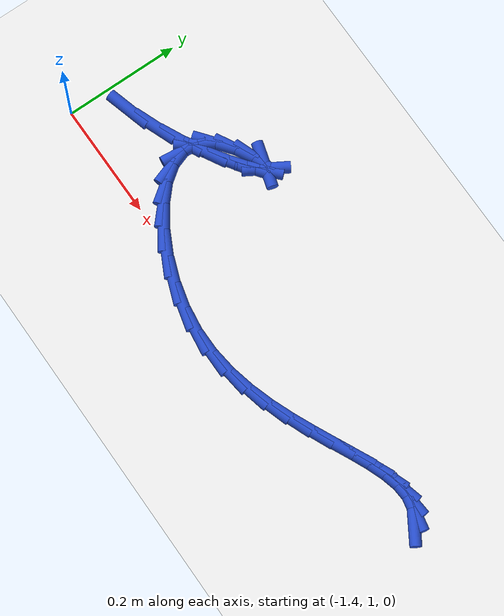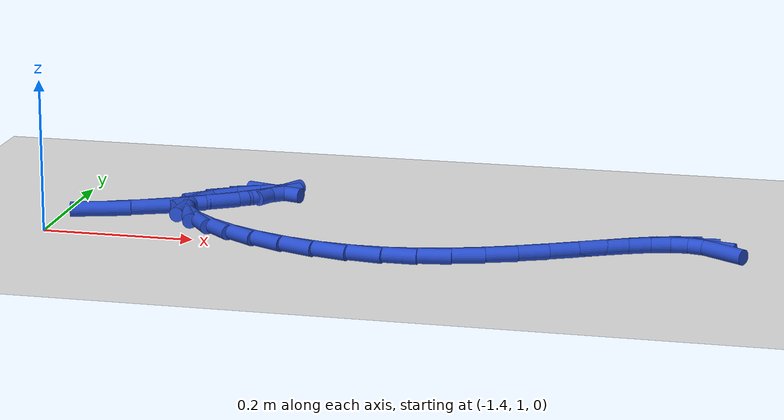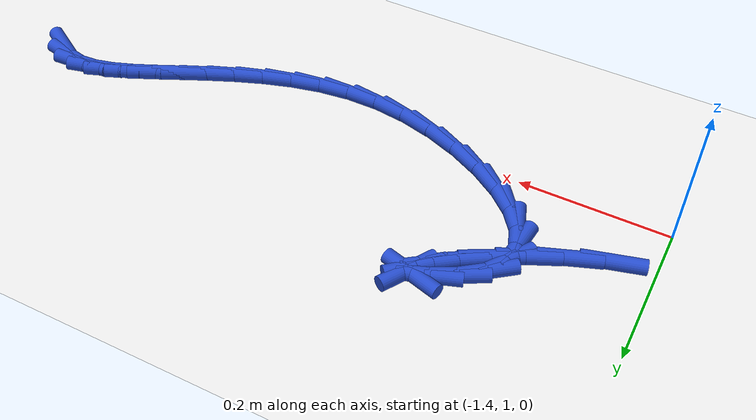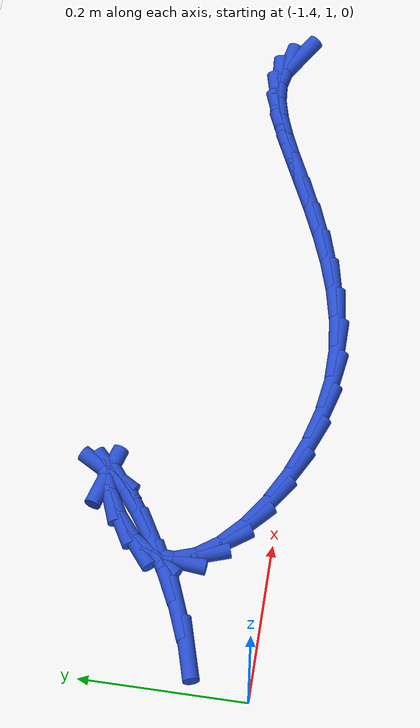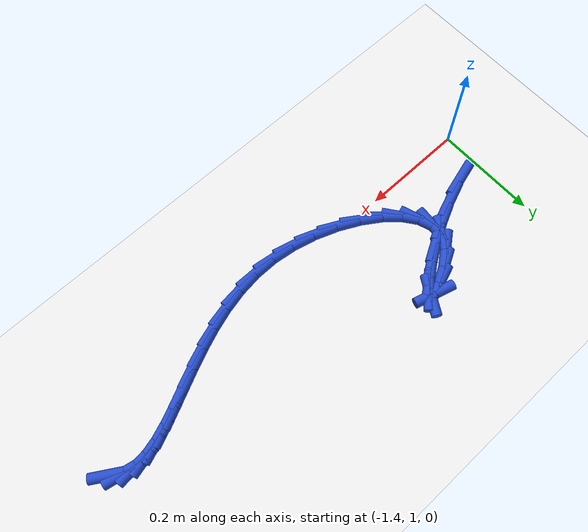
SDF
<sdf version="1.6">
 <world name="default">
  <model name="ground_plane">
   <static>1</static>
   <link name="link">
    <collision name="collision">
     <geometry><plane><normal>0 0 1</normal><size>100 100</size></plane></geometry>
     <surface><friction><ode><mu>100</mu><mu2>50</mu2></ode></friction></surface>
    </collision>
    <visual name="visual">
     <cast_shadows>0</cast_shadows>
     <geometry><plane><normal>0 0 1</normal><size>100 100</size></plane></geometry>
     <material>
      <script><uri>file://media/materials/scripts/gazebo.material</uri><name>Gazebo/WhiteGlow</name></script>
     </material>
    </visual>
   </link>
  </model>
  <model name="line">
   <link name="link_38">
    <pose>-0.5342574480073634 1.0647230932263498 0.01 0 1.57 -0.5526281072199354</pose>
    <collision name="collision">
     <geometry><cylinder><radius>0.01</radius><length>0.08</length></cylinder></geometry>
    </collision>
    <visual name="visual">
     <material>
      <script><name>Gazebo/Blue</name><uri>file://media/materials/scripts/gazebo.material</uri></script>
     </material>
     <geometry><cylinder><radius>0.01</radius><length>0.08</length></cylinder></geometry>
    </visual>
   </link>
   <link name="link_39">
    <pose>-0.5521880657098341 1.0757813904558735 0.01 0 1.57 -0.20149169539810724</pose>
    <collision name="collision">
     <geometry><cylinder><radius>0.01</radius><length>0.08</length></cylinder></geometry>
    </collision>
    <visual name="visual">
     <material>
      <script><name>Gazebo/Blue</name><uri>file://media/materials/scripts/gazebo.material</uri></script>
     </material>
     <geometry><cylinder><radius>0.01</radius><length>0.08</length></cylinder></geometry>
    </visual>
   </link>
   <link name="link_40">
    <pose>-0.5726169906189474 1.079954274109767 0.01 0 1.57 0.0745900186100927</pose>
    <collision name="collision">
     <geometry><cylinder><radius>0.01</radius><length>0.08</length></cylinder></geometry>
    </collision>
    <visual name="visual">
     <material>
      <script><name>Gazebo/Blue</name><uri>file://media/materials/scripts/gazebo.material</uri></script>
     </material>
     <geometry><cylinder><radius>0.01</radius><length>0.08</length></cylinder></geometry>
    </visual>
   </link>
   <link name="link_41">
    <pose>-0.5954534186957834 1.0782477384724785 0.01 0 1.57 0.25586253684193516</pose>
    <collision name="collision">
     <geometry><cylinder><radius>0.01</radius><length>0.08</length></cylinder></geometry>
    </collision>
    <visual name="visual">
     <material>
      <script><name>Gazebo/Blue</name><uri>file://media/materials/scripts/gazebo.material</uri></script>
     </material>
     <geometry><cylinder><radius>0.01</radius><length>0.08</length></cylinder></geometry>
    </visual>
   </link>
   <link name="link_42">
    <pose>-0.6206065459014207 1.0716677778284585 0.01 0 1.57 0.3645302382293565</pose>
    <collision name="collision">
     <geometry><cylinder><radius>0.01</radius><length>0.08</length></cylinder></geometry>
    </collision>
    <visual name="visual">
     <material>
      <script><name>Gazebo/Blue</name><uri>file://media/materials/scripts/gazebo.material</uri></script>
     </material>
     <geometry><cylinder><radius>0.01</radius><length>0.08</length></cylinder></geometry>
    </visual>
   </link>
   <link name="link_43">
    <pose>-0.6479855681969392 1.0612203864621559 0.01 0 1.57 0.4236278530203895</pose>
    <collision name="collision">
     <geometry><cylinder><radius>0.01</radius><length>0.08</length></cylinder></geometry>
    </collision>
    <visual name="visual">
     <material>
      <script><name>Gazebo/Blue</name><uri>file://media/materials/scripts/gazebo.material</uri></script>
     </material>
     <geometry><cylinder><radius>0.01</radius><length>0.08</length></cylinder></geometry>
    </visual>
   </link>
   <link name="link_44">
    <pose>-0.6774996815434189 1.047911558658021 0.01 0 1.57 0.4479380733620824</pose>
    <collision name="collision">
     <geometry><cylinder><radius>0.01</radius><length>0.08</length></cylinder></geometry>
    </collision>
    <visual name="visual">
     <material>
      <script><name>Gazebo/Blue</name><uri>file://media/materials/scripts/gazebo.material</uri></script>
     </material>
     <geometry><cylinder><radius>0.01</radius><length>0.08</length></cylinder></geometry>
    </visual>
   </link>
   <link name="link_45">
    <pose>-0.7090580819019382 1.0327472887005027 0.01 0 1.57 0.44577267475583565</pose>
    <collision name="collision">
     <geometry><cylinder><radius>0.01</radius><length>0.08</length></cylinder></geometry>
    </collision>
    <visual name="visual">
     <material>
      <script><name>Gazebo/Blue</name><uri>file://media/materials/scripts/gazebo.material</uri></script>
     </material>
     <geometry><cylinder><radius>0.01</radius><length>0.08</length></cylinder></geometry>
    </visual>
   </link>
   <link name="link_46">
    <pose>-0.7425699652335775 1.0167335708740508 0.01 0 1.57 0.42141000356976116</pose>
    <collision name="collision">
     <geometry><cylinder><radius>0.01</radius><length>0.08</length></cylinder></geometry>
    </collision>
    <visual name="visual">
     <material>
      <script><name>Gazebo/Blue</name><uri>file://media/materials/scripts/gazebo.material</uri></script>
     </material>
     <geometry><cylinder><radius>0.01</radius><length>0.08</length></cylinder></geometry>
    </visual>
   </link>
   <link name="link_47">
    <pose>-0.7779445274994157 1.0008763994631151 0.01 0 1.57 0.3766958932644989</pose>
    <collision name="collision">
     <geometry><cylinder><radius>0.01</radius><length>0.08</length></cylinder></geometry>
    </collision>
    <visual name="visual">
     <material>
      <script><name>Gazebo/Blue</name><uri>file://media/materials/scripts/gazebo.material</uri></script>
     </material>
     <geometry><cylinder><radius>0.01</radius><length>0.08</length></cylinder></geometry>
    </visual>
   </link>
   <link name="link_48">
    <pose>-0.8150909646605328 0.9861817687521451 0.01 0 1.57 0.3120676215993677</pose>
    <collision name="collision">
     <geometry><cylinder><radius>0.01</radius><length>0.08</length></cylinder></geometry>
    </collision>
    <visual name="visual">
     <material>
      <script><name>Gazebo/Blue</name><uri>file://media/materials/scripts/gazebo.material</uri></script>
     </material>
     <geometry><cylinder><radius>0.01</radius><length>0.08</length></cylinder></geometry>
    </visual>
   </link>
   <link name="link_49">
    <pose>-0.8539184726780076 0.9736556730255902 0.01 0 1.57 0.22737165304087853</pose>
    <collision name="collision">
     <geometry><cylinder><radius>0.01</radius><length>0.08</length></cylinder></geometry>
    </collision>
    <visual name="visual">
     <material>
      <script><name>Gazebo/Blue</name><uri>file://media/materials/scripts/gazebo.material</uri></script>
     </material>
     <geometry><cylinder><radius>0.01</radius><length>0.08</length></cylinder></geometry>
    </visual>
   </link>
   <link name="link_50">
    <pose>-0.8943362475129205 0.9643041065678999 0.01 0 1.57 0.1227430136782317</pose>
    <collision name="collision">
     <geometry><cylinder><radius>0.01</radius><length>0.08</length></cylinder></geometry>
    </collision>
    <visual name="visual">
     <material>
      <script><name>Gazebo/Blue</name><uri>file://media/materials/scripts/gazebo.material</uri></script>
     </material>
     <geometry><cylinder><radius>0.01</radius><length>0.08</length></cylinder></geometry>
    </visual>
   </link>
   <link name="link_51">
    <pose>-0.9362534851263498 0.9591330636635236 0.01 0 1.57 -0.00035717513155542773</pose>
    <collision name="collision">
     <geometry><cylinder><radius>0.01</radius><length>0.08</length></cylinder></geometry>
    </collision>
    <visual name="visual">
     <material>
      <script><name>Gazebo/Blue</name><uri>file://media/materials/scripts/gazebo.material</uri></script>
     </material>
     <geometry><cylinder><radius>0.01</radius><length>0.08</length></cylinder></geometry>
    </visual>
   </link>
   <link name="link_52">
    <pose>-0.9795793814793761 0.9591485385969113 0.01 0 1.57 -0.13365852641760356</pose>
    <collision name="collision">
     <geometry><cylinder><radius>0.01</radius><length>0.08</length></cylinder></geometry>
    </collision>
    <visual name="visual">
     <material>
      <script><name>Gazebo/Blue</name><uri>file://media/materials/scripts/gazebo.material</uri></script>
     </material>
     <geometry><cylinder><radius>0.01</radius><length>0.08</length></cylinder></geometry>
    </visual>
   </link>
   <link name="link_53">
    <pose>-1.0240331504240434 0.9651258001099841 0.01 0 1.57 -0.25368828305376373</pose>
    <collision name="collision">
     <geometry><cylinder><radius>0.01</radius><length>0.08</length></cylinder></geometry>
    </collision>
    <visual name="visual">
     <material>
      <script><name>Gazebo/Blue</name><uri>file://media/materials/scripts/gazebo.material</uri></script>
     </material>
     <geometry><cylinder><radius>0.01</radius><length>0.08</length></cylinder></geometry>
    </visual>
   </link>
   <link name="link_54">
    <pose>-1.0683195794695923 0.9766081374204405 0.01 0 1.57 -0.362658353411377</pose>
    <collision name="collision">
     <geometry><cylinder><radius>0.01</radius><length>0.08</length></cylinder></geometry>
    </collision>
    <visual name="visual">
     <material>
      <script><name>Gazebo/Blue</name><uri>file://media/materials/scripts/gazebo.material</uri></script>
     </material>
     <geometry><cylinder><radius>0.01</radius><length>0.08</length></cylinder></geometry>
    </visual>
   </link>
   <link name="link_55">
    <pose>-1.1108062508050187 0.9927293176028048 0.01 0 1.57 -0.47112447422631526</pose>
    <collision name="collision">
     <geometry><cylinder><radius>0.01</radius><length>0.08</length></cylinder></geometry>
    </collision>
    <visual name="visual">
     <material>
      <script><name>Gazebo/Blue</name><uri>file://media/materials/scripts/gazebo.material</uri></script>
     </material>
     <geometry><cylinder><radius>0.01</radius><length>0.08</length></cylinder></geometry>
    </visual>
   </link>
   <link name="link_56">
    <pose>-1.149860520837305 1.0126228335285312 0.01 0 1.57 -0.5908459494556867</pose>
    <collision name="collision">
     <geometry><cylinder><radius>0.01</radius><length>0.08</length></cylinder></geometry>
    </collision>
    <visual name="visual">
     <material>
      <script><name>Gazebo/Blue</name><uri>file://media/materials/scripts/gazebo.material</uri></script>
     </material>
     <geometry><cylinder><radius>0.01</radius><length>0.08</length></cylinder></geometry>
    </visual>
   </link>
   <link name="link_57">
    <pose>-1.1838497459734345 1.0354221780690747 0.01 0 1.57 -0.7383800681940237</pose>
    <collision name="collision">
     <geometry><cylinder><radius>0.01</radius><length>0.08</length></cylinder></geometry>
    </collision>
    <visual name="visual">
     <material>
      <script><name>Gazebo/Blue</name><uri>file://media/materials/scripts/gazebo.material</uri></script>
     </material>
     <geometry><cylinder><radius>0.01</radius><length>0.08</length></cylinder></geometry>
    </visual>
   </link>
   <link name="link_58">
    <pose>-1.2111412826203907 1.0602608440958892 0.01 0 1.57 -0.9409004756554119</pose>
    <collision name="collision">
     <geometry><cylinder><radius>0.01</radius><length>0.08</length></cylinder></geometry>
    </collision>
    <visual name="visual">
     <material>
      <script><name>Gazebo/Blue</name><uri>file://media/materials/scripts/gazebo.material</uri></script>
     </material>
     <geometry><cylinder><radius>0.01</radius><length>0.08</length></cylinder></geometry>
    </visual>
   </link>
   <link name="link_59">
    <pose>-1.230102487185157 1.0862723244804307 0.01 0 1.57 -1.241349655963164</pose>
    <collision name="collision">
     <geometry><cylinder><radius>0.01</radius><length>0.08</length></cylinder></geometry>
    </collision>
    <visual name="visual">
     <material>
      <script><name>Gazebo/Blue</name><uri>file://media/materials/scripts/gazebo.material</uri></script>
     </material>
     <geometry><cylinder><radius>0.01</radius><length>0.08</length></cylinder></geometry>
    </visual>
   </link>
   <link name="link_60">
    <pose>-1.2391007160747158 1.1125901120941528 0.01 0 1.57 1.470296243678676</pose>
    <collision name="collision">
     <geometry><cylinder><radius>0.01</radius><length>0.08</length></cylinder></geometry>
    </collision>
    <visual name="visual">
     <material>
      <script><name>Gazebo/Blue</name><uri>file://media/materials/scripts/gazebo.material</uri></script>
     </material>
     <geometry><cylinder><radius>0.01</radius><length>0.08</length></cylinder></geometry>
    </visual>
   </link>
   <link name="link_61">
    <pose>-1.2365033256960516 1.138347699808511 0.01 0 1.57 0.9944003443232351</pose>
    <collision name="collision">
     <geometry><cylinder><radius>0.01</radius><length>0.08</length></cylinder></geometry>
    </collision>
    <visual name="visual">
     <material>
      <script><name>Gazebo/Blue</name><uri>file://media/materials/scripts/gazebo.material</uri></script>
     </material>
     <geometry><cylinder><radius>0.01</radius><length>0.08</length></cylinder></geometry>
    </visual>
   </link>
   <link name="link_62">
    <pose>-1.2206887707183847 1.1626766789490872 0.01 0 1.57 0.6666134272885653</pose>
    <collision name="collision">
     <geometry><cylinder><radius>0.01</radius><length>0.08</length></cylinder></geometry>
    </collision>
    <visual name="visual">
     <material>
      <script><name>Gazebo/Blue</name><uri>file://media/materials/scripts/gazebo.material</uri></script>
     </material>
     <geometry><cylinder><radius>0.01</radius><length>0.08</length></cylinder></geometry>
    </visual>
   </link>
   <link name="link_63">
    <pose>-1.19342295070974 1.1841282453051103 0.01 0 1.57 0.4997919217530542</pose>
    <collision name="collision">
     <geometry><cylinder><radius>0.01</radius><length>0.08</length></cylinder></geometry>
    </collision>
    <visual name="visual">
     <material>
      <script><name>Gazebo/Blue</name><uri>file://media/materials/scripts/gazebo.material</uri></script>
     </material>
     <geometry><cylinder><radius>0.01</radius><length>0.08</length></cylinder></geometry>
    </visual>
   </link>
   <link name="link_64">
    <pose>-1.164614901225209 1.199858372036359 0.01 0 1.57 0.347324865897253</pose>
    <collision name="collision">
     <geometry><cylinder><radius>0.01</radius><length>0.08</length></cylinder></geometry>
    </collision>
    <visual name="visual">
     <material>
      <script><name>Gazebo/Blue</name><uri>file://media/materials/scripts/gazebo.material</uri></script>
     </material>
     <geometry><cylinder><radius>0.01</radius><length>0.08</length></cylinder></geometry>
    </visual>
   </link>
   <link name="link_65">
    <pose>-1.144956734683563 1.2069746255836111 0.01 0 1.57 -0.2845978343237876</pose>
    <collision name="collision">
     <geometry><cylinder><radius>0.01</radius><length>0.08</length></cylinder></geometry>
    </collision>
    <visual name="visual">
     <material>
      <script><name>Gazebo/Blue</name><uri>file://media/materials/scripts/gazebo.material</uri></script>
     </material>
     <geometry><cylinder><radius>0.01</radius><length>0.08</length></cylinder></geometry>
    </visual>
   </link>
   <link name="link_66">
    <pose>-1.1385105055588038 1.2050888523621355 0.01 0 1.57 1.0347167951568164</pose>
    <collision name="collision">
     <geometry><cylinder><radius>0.01</radius><length>0.08</length></cylinder></geometry>
    </collision>
    <visual name="visual">
     <material>
      <script><name>Gazebo/Blue</name><uri>file://media/materials/scripts/gazebo.material</uri></script>
     </material>
     <geometry><cylinder><radius>0.01</radius><length>0.08</length></cylinder></geometry>
    </visual>
   </link>
   <link name="link_67">
    <pose>-1.144015157053873 1.1958235238932209 0.01 0 1.57 0.7506302580921321</pose>
    <collision name="collision">
     <geometry><cylinder><radius>0.01</radius><length>0.08</length></cylinder></geometry>
    </collision>
    <visual name="visual">
     <material>
      <script><name>Gazebo/Blue</name><uri>file://media/materials/scripts/gazebo.material</uri></script>
     </material>
     <geometry><cylinder><radius>0.01</radius><length>0.08</length></cylinder></geometry>
    </visual>
   </link>
   <link name="link_68">
    <pose>-1.160059414456606 1.180857851431012 0.01 0 1.57 0.6462251928461011</pose>
    <collision name="collision">
     <geometry><cylinder><radius>0.01</radius><length>0.08</length></cylinder></geometry>
    </collision>
    <visual name="visual">
     <material>
      <script><name>Gazebo/Blue</name><uri>file://media/materials/scripts/gazebo.material</uri></script>
     </material>
     <geometry><cylinder><radius>0.01</radius><length>0.08</length></cylinder></geometry>
    </visual>
   </link>
   <link name="link_69">
    <pose>-1.1852320030548371 1.1618710462296538 0.01 0 1.57 0.5753155610667714</pose>
    <collision name="collision">
     <geometry><cylinder><radius>0.01</radius><length>0.08</length></cylinder></geometry>
    </collision>
    <visual name="visual">
     <material>
      <script><name>Gazebo/Blue</name><uri>file://media/materials/scripts/gazebo.material</uri></script>
     </material>
     <geometry><cylinder><radius>0.01</radius><length>0.08</length></cylinder></geometry>
    </visual>
   </link>
   <link name="link_70">
    <pose>-1.2181216481364012 1.1405423195432907 0.01 0 1.57 0.5113036462322049</pose>
    <collision name="collision">
     <geometry><cylinder><radius>0.01</radius><length>0.08</length></cylinder></geometry>
    </collision>
    <visual name="visual">
     <material>
      <script><name>Gazebo/Blue</name><uri>file://media/materials/scripts/gazebo.material</uri></script>
     </material>
     <geometry><cylinder><radius>0.01</radius><length>0.08</length></cylinder></geometry>
    </visual>
   </link>
   <link name="link_71">
    <pose>-1.2573170749891327 1.1185508826260684 0.01 0 1.57 0.4440443674464038</pose>
    <collision name="collision">
     <geometry><cylinder><radius>0.01</radius><length>0.08</length></cylinder></geometry>
    </collision>
    <visual name="visual">
     <material>
      <script><name>Gazebo/Blue</name><uri>file://media/materials/scripts/gazebo.material</uri></script>
     </material>
     <geometry><cylinder><radius>0.01</radius><length>0.08</length></cylinder></geometry>
    </visual>
   </link>
   <link name="link_72">
    <pose>-1.3014070089008665 1.0975759467321315 0.01 0 1.57 0.3668414746243127</pose>
    <collision name="collision">
     <geometry><cylinder><radius>0.01</radius><length>0.08</length></cylinder></geometry>
    </collision>
    <visual name="visual">
     <material>
      <script><name>Gazebo/Blue</name><uri>file://media/materials/scripts/gazebo.material</uri></script>
     </material>
     <geometry><cylinder><radius>0.01</radius><length>0.08</length></cylinder></geometry>
    </visual>
   </link>
   <link name="link_73">
    <pose>-1.3489801751594384 1.0792967231156254 0.01 0 1.57 0.27307716609180765</pose>
    <collision name="collision">
     <geometry><cylinder><radius>0.01</radius><length>0.08</length></cylinder></geometry>
    </collision>
    <visual name="visual">
     <material>
      <script><name>Gazebo/Blue</name><uri>file://media/materials/scripts/gazebo.material</uri></script>
     </material>
     <geometry><cylinder><radius>0.01</radius><length>0.08</length></cylinder></geometry>
    </visual>
   </link>
  </model>
 </world>
</sdf>
